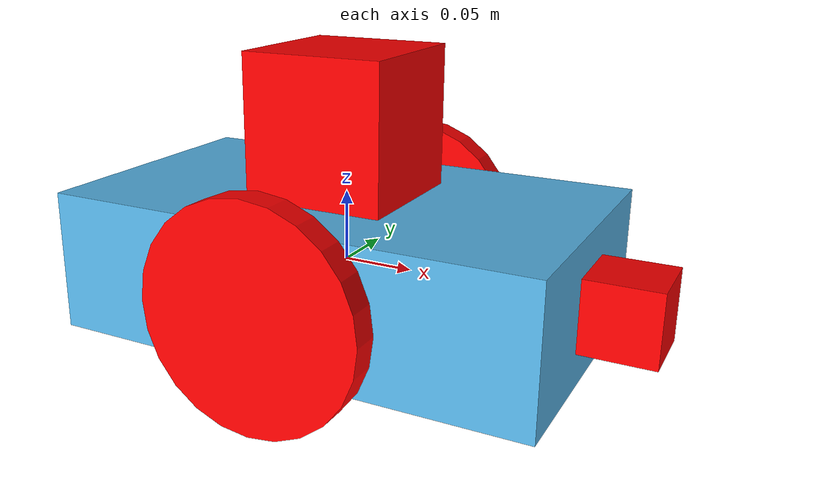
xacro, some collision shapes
<?xml version="1.0"?>
<robot name="my_robot" xmlns:xacro="http://www.ros.org/wiki/xacro">
    <xacro:include filename="$(find my_robot)/urdf/my_robot.gazebo" />
    <link name="robot_footprint"></link>
    <joint name="robot_footprint_joint" type="fixed">
        <origin xyz="0.0 0.0 0.0" rpy="0.0 0.0 0.0"/>
        <parent link="robot_footprint"/>
        <child link="chassis"/>
    </joint>
    <link name="chassis">
        <pose>0 0 0.1 0 0 0</pose>
        <inertial>
            <mass value="10.0"/>
            <origin xyz="0.0 0.0 0.0" rpy="0.0 0.0 0.0"/>
            <inertia ixx="0.1" ixy="0.0" ixz="0.0" iyy="0.1" iyz="0.0" izz="0.1"/>
        </inertial>
        <collision>
            <origin xyz="0.0 0.0 0.0" rpy="0.0 0.0 0.0"/>
            <geometry>
                <box size="0.35 0.2 0.1"/>
            </geometry>
        </collision>
        <visual name='chassis_visual'>
            <origin xyz="0.0 0.0 0.0" rpy="0.0 0.0 0.0"/>
            <geometry>
                <box size=".35 0.2 0.1"/>
            </geometry>
        </visual>
        <collision name="back_caster_collision">
            <origin xyz="-0.136 0.0 -0.037" rpy="0.0 0.0 0.0"/>
            <geometry>
                <sphere radius="0.039"/>
            </geometry>
        </collision>

        <visual name='back_caster_visual'>
            <origin xyz="-0.136 0.0 -0.037" rpy="0.0 0.0 0.0"/>
            <geometry>
                <sphere radius="0.039"/>
            </geometry>
        </visual>

        <collision name="front_caster_collision">
            <origin xyz="0.136 0.0 -0.037" rpy="0.0 0.0 0.0"/>
            <geometry>
                <sphere radius="0.039"/>
            </geometry>
        </collision>

        <visual name="front_caster_visual">
            <origin xyz="0.136 0.0 -0.037" rpy="0.0 0.0 0.0"/>
            <geometry>
                <sphere radius="0.039"/>
            </geometry>
        </visual>
    </link>

    <link name="rigth_wheel">
        <inertial>
            <origin xyz="0.0 0.0 0.0" rpy="0.0 1.5707 1.5707"/>
            <mass value=".50"/>
            <inertia ixx="0.1" ixy="0.0" ixz="0.0" iyy="0.1" iyz="0.0" izz="0.1"/>
        </inertial>
        <visual name="rigth_wheel_visual">
            <origin xyz="0.0 0.0 0.0" rpy="0.0 1.5707 1.5707"/>
            <geometry>
                <cylinder radius="0.078" length="0.02"/>
            </geometry>
            <material name="">
                <color rgba="1.0 0.0 0.0 1.0"/>
                <texture filename=""/>
            </material>
        </visual>
        <collision name="rigth_wheel_collision">
            <origin xyz="0.0 0.0 0.0" rpy="0.0 1.5707 1.5707"/>
            <geometry>
                <cylinder radius="0.078" length="0.02"/>
            </geometry>
        </collision>
    </link>

    <link name="left_wheel">
        <inertial>
            <origin xyz="0.0 0.0 0.0" rpy="0.0 1.5707 1.5707"/>
            <mass value=".50"/>
            <inertia ixx="0.1" ixy="0.0" ixz="0.0" iyy="0.1" iyz="0.0" izz="0.1"/>
        </inertial>
        <visual name="left_wheel_visual">
            <origin xyz="0.0 0.0 0.0" rpy="0.0 1.5707 1.5707"/>
            <geometry>
                <cylinder radius="0.078" length="0.02"/>
            </geometry>
            <material name="">
                <color rgba="1.0 0.0 0.0 1.0"/>
                <texture filename=""/>
            </material>
        </visual>
        <collision name="left_wheel_collision">
            <origin xyz="0.0 0.0 0.0" rpy="0.0 1.5707 1.5707"/>
            <geometry>
                <cylinder radius="0.078" length="0.02"/>
            </geometry>
        </collision>
    </link>

    <joint name="left_wheel_hinge" type="continuous">
        <origin xyz="0.0 0.12 0.0" rpy="0.0 0.0 0.0"/>
        <parent link="chassis"/>
        <child link="left_wheel"/>
        <axis xyz="0.0 1.0 0.0"/>
        <limit effort="10000.0" velocity="1000.0"/>
        <dynamics damping="1.0" friction="1.0"/>
    </joint>

    <joint name="rigth_wheel_hinge" type="continuous">
        <origin xyz="0.0 -0.12 0.0" rpy="0.0 0.0 0.0"/>
        <parent link="chassis"/>
        <child link="rigth_wheel"/>
        <axis xyz="0.0 1.0 0.0"/>
        <limit effort="10000.0" velocity="1000.0"/>
        <dynamics damping="1.0" friction="1.0"/>
    </joint>

<!-- Link y Joint para una camara sencilla -->
    <link name="camera">
        <inertial>
            <origin xyz="0.0 0.0 0.0" rpy="0.0 0.0 0.0"/>
            <mass value="1e-5"/>
            <inertia ixx="1e-6" ixy="0.0" ixz="0.0" iyy="1e-6" iyz="0.0" izz="1e-6"/>
        </inertial>
        <visual name="camera_visual">
            <origin xyz="0.0 0.0 0.0" rpy="0.0 0.0 0.0"/>
            <geometry>
                <box size="0.05 0.05 0.05"/>
            </geometry>
            <material name="">
                <color rgba="1.0 0.0 0.0 1.0"/>
                <texture filename=""/>
            </material>
        </visual>
        <collision name="camera_collision">
            <origin xyz="0.0 0.0 0.0" rpy="0.0 0.0 0.0"/>
            <geometry>
                <box size="0.05 0.05 0.05"/>
            </geometry>
        </collision>
    </link>

    <joint name="camera_joint" type="fixed">
        <origin xyz="0.2 0.0 0.0" rpy="0.0 0.0 0.0"/>
        <parent link="chassis"/>
        <child link="camera"/>
        <axis xyz="0.0 1.0 0.0"/>
    </joint>

<!-- Lidar hokuyo -->

    <link name="hokuyo">
        <inertial>
            <origin xyz="0.0 0.0 0.0" rpy="0.0 0.0 0.0"/>
            <mass value="1e-5"/>
            <inertia ixx="1e-6" ixy="0.0" ixz="0.0" iyy="1e-6" iyz="0.0" izz="1e-6"/>
        </inertial>
        <visual name="hokuyo_visual">
            <origin xyz="0.0 0.0 0.0" rpy="0.0 0.0 0.0"/>
            <geometry>
                <mesh filename="package://my_robot/meshes/hokuyo.dae"/>
            </geometry>
            <material name="">
                <color rgba="1.0 0.0 0.0 1.0"/>
                <texture filename=""/>
            </material>
        </visual>
        <collision>
            <origin xyz="0.0 0.0 0.0" rpy="0.0 0.0 0.0"/>
            <geometry>
                <box size="0.1 0.1 0.1"/>
            </geometry>
        </collision>
    </link>

    <joint name="hokuyo_hinge" type="fixed">
        <origin xyz="0.0 0.0 0.1" rpy="0.0 0.0 0.0"/>
        <parent link="chassis"/>
        <child link="hokuyo"/>
        <axis xyz="0.0 1.0 0.0"/>
    </joint>

</robot>
